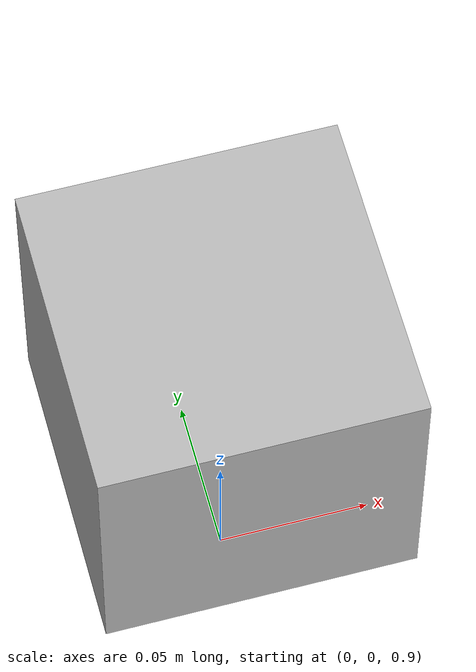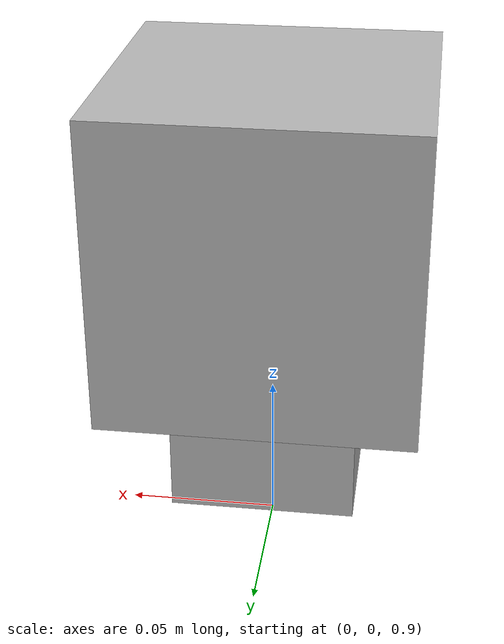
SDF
<?xml version="1.0"?>
<sdf version="1.9">
  <world name="sandia_hand_full_test">
    <physics name="1ms" type="ode">
      <max_step_size>0.001</max_step_size>
      <real_time_factor>0</real_time_factor>
    </physics>
    <plugin filename="gz-sim-physics-system" name="gz::sim::systems::Physics"/>

    <model name="sandia_hand_full_test_model">
      <pose>0 0 1 0 0 0</pose>
      <static>false</static>

      <link name="l_hand">
        <inertial>
          <mass>0.5</mass>
          <inertia><ixx>0.001</ixx><iyy>0.001</iyy><izz>0.001</izz></inertia>
        </inertial>
        <collision name="palm_mid_collision">
          <pose>0 0 -0.05 0 0 0</pose>
          <geometry>
            <box><size>0.06 0.06 0.06</size></box>
          </geometry>
        </collision>
        <visual name="palm_visual">
          <pose>0 0 -0.05 0 0 0</pose>
          <geometry>
            <box><size>0.06 0.06 0.06</size></box>
          </geometry>
        </visual>
      </link>

      <joint name="anchor" type="fixed">
        <parent>world</parent>
        <child>l_hand</child>
      </joint>

      <!-- Finger 0: joints left_f0_j0/j1/j2 -->
      <link name="l_f0_link0">
        <pose>0.05 0 0 0 0 0</pose>
        <inertial>
          <mass>0.05</mass>
          <inertia><ixx>0.0001</ixx><iyy>0.0001</iyy><izz>0.0001</izz></inertia>
        </inertial>
      </link>
      <joint name="left_f0_j0" type="revolute">
        <parent>l_hand</parent>
        <child>l_f0_link0</child>
        <axis>
          <xyz>0 0 1</xyz>
          <limit><lower>-1.57</lower><upper>1.57</upper></limit>
        </axis>
      </joint>
      <link name="l_f0_link1">
        <pose>0.09 0 0 0 0 0</pose>
        <inertial>
          <mass>0.05</mass>
          <inertia><ixx>0.0001</ixx><iyy>0.0001</iyy><izz>0.0001</izz></inertia>
        </inertial>
      </link>
      <joint name="left_f0_j1" type="revolute">
        <parent>l_f0_link0</parent>
        <child>l_f0_link1</child>
        <axis>
          <xyz>0 0 1</xyz>
          <limit><lower>-1.57</lower><upper>1.57</upper></limit>
        </axis>
      </joint>
      <link name="l_f0_link2">
        <pose>0.13 0 0 0 0 0</pose>
        <inertial>
          <mass>0.05</mass>
          <inertia><ixx>0.0001</ixx><iyy>0.0001</iyy><izz>0.0001</izz></inertia>
        </inertial>
      </link>
      <joint name="left_f0_j2" type="revolute">
        <parent>l_f0_link1</parent>
        <child>l_f0_link2</child>
        <axis>
          <xyz>0 0 1</xyz>
          <limit><lower>-1.57</lower><upper>1.57</upper></limit>
        </axis>
      </joint>

      <!-- Finger 1: joints left_f1_j0/j1/j2 -->
      <link name="l_f1_link0">
        <pose>0 0.05 0 0 0 0</pose>
        <inertial>
          <mass>0.05</mass>
          <inertia><ixx>0.0001</ixx><iyy>0.0001</iyy><izz>0.0001</izz></inertia>
        </inertial>
      </link>
      <joint name="left_f1_j0" type="revolute">
        <parent>l_hand</parent>
        <child>l_f1_link0</child>
        <axis>
          <xyz>0 0 1</xyz>
          <limit><lower>-1.57</lower><upper>1.57</upper></limit>
        </axis>
      </joint>
      <link name="l_f1_link1">
        <pose>0 0.09 0 0 0 0</pose>
        <inertial>
          <mass>0.05</mass>
          <inertia><ixx>0.0001</ixx><iyy>0.0001</iyy><izz>0.0001</izz></inertia>
        </inertial>
      </link>
      <joint name="left_f1_j1" type="revolute">
        <parent>l_f1_link0</parent>
        <child>l_f1_link1</child>
        <axis>
          <xyz>0 0 1</xyz>
          <limit><lower>-1.57</lower><upper>1.57</upper></limit>
        </axis>
      </joint>
      <link name="l_f1_link2">
        <pose>0 0.13 0 0 0 0</pose>
        <inertial>
          <mass>0.05</mass>
          <inertia><ixx>0.0001</ixx><iyy>0.0001</iyy><izz>0.0001</izz></inertia>
        </inertial>
      </link>
      <joint name="left_f1_j2" type="revolute">
        <parent>l_f1_link1</parent>
        <child>l_f1_link2</child>
        <axis>
          <xyz>0 0 1</xyz>
          <limit><lower>-1.57</lower><upper>1.57</upper></limit>
        </axis>
      </joint>

      <!-- Finger 2: joints left_f2_j0/j1/j2 -->
      <link name="l_f2_link0">
        <pose>-0.05 0 0 0 0 0</pose>
        <inertial>
          <mass>0.05</mass>
          <inertia><ixx>0.0001</ixx><iyy>0.0001</iyy><izz>0.0001</izz></inertia>
        </inertial>
      </link>
      <joint name="left_f2_j0" type="revolute">
        <parent>l_hand</parent>
        <child>l_f2_link0</child>
        <axis>
          <xyz>0 0 1</xyz>
          <limit><lower>-1.57</lower><upper>1.57</upper></limit>
        </axis>
      </joint>
      <link name="l_f2_link1">
        <pose>-0.09 0 0 0 0 0</pose>
        <inertial>
          <mass>0.05</mass>
          <inertia><ixx>0.0001</ixx><iyy>0.0001</iyy><izz>0.0001</izz></inertia>
        </inertial>
      </link>
      <joint name="left_f2_j1" type="revolute">
        <parent>l_f2_link0</parent>
        <child>l_f2_link1</child>
        <axis>
          <xyz>0 0 1</xyz>
          <limit><lower>-1.57</lower><upper>1.57</upper></limit>
        </axis>
      </joint>
      <link name="l_f2_link2">
        <pose>-0.13 0 0 0 0 0</pose>
        <inertial>
          <mass>0.05</mass>
          <inertia><ixx>0.0001</ixx><iyy>0.0001</iyy><izz>0.0001</izz></inertia>
        </inertial>
      </link>
      <joint name="left_f2_j2" type="revolute">
        <parent>l_f2_link1</parent>
        <child>l_f2_link2</child>
        <axis>
          <xyz>0 0 1</xyz>
          <limit><lower>-1.57</lower><upper>1.57</upper></limit>
        </axis>
      </joint>

      <!-- Finger 3: joints left_f3_j0/j1/j2 -->
      <link name="l_f3_link0">
        <pose>0 -0.05 0 0 0 0</pose>
        <inertial>
          <mass>0.05</mass>
          <inertia><ixx>0.0001</ixx><iyy>0.0001</iyy><izz>0.0001</izz></inertia>
        </inertial>
      </link>
      <joint name="left_f3_j0" type="revolute">
        <parent>l_hand</parent>
        <child>l_f3_link0</child>
        <axis>
          <xyz>0 0 1</xyz>
          <limit><lower>-1.57</lower><upper>1.57</upper></limit>
        </axis>
      </joint>
      <link name="l_f3_link1">
        <pose>0 -0.09 0 0 0 0</pose>
        <inertial>
          <mass>0.05</mass>
          <inertia><ixx>0.0001</ixx><iyy>0.0001</iyy><izz>0.0001</izz></inertia>
        </inertial>
      </link>
      <joint name="left_f3_j1" type="revolute">
        <parent>l_f3_link0</parent>
        <child>l_f3_link1</child>
        <axis>
          <xyz>0 0 1</xyz>
          <limit><lower>-1.57</lower><upper>1.57</upper></limit>
        </axis>
      </joint>
      <link name="l_f3_link2">
        <pose>0 -0.13 0 0 0 0</pose>
        <inertial>
          <mass>0.05</mass>
          <inertia><ixx>0.0001</ixx><iyy>0.0001</iyy><izz>0.0001</izz></inertia>
        </inertial>
      </link>
      <joint name="left_f3_j2" type="revolute">
        <parent>l_f3_link1</parent>
        <child>l_f3_link2</child>
        <axis>
          <xyz>0 0 1</xyz>
          <limit><lower>-1.57</lower><upper>1.57</upper></limit>
        </axis>
      </joint>

      <plugin filename="SandiaHandPlugin"
              name="drcsim_gazebo_ros_plugins::SandiaHandPlugin">
        <side>left</side>
      </plugin>
    </model>

    <model name="obstacle">
      <static>false</static>
      <pose>0 0 1.01 0 0 0</pose>
      <link name="obstacle_link">
        <inertial>
          <mass>1.0</mass>
          <inertia><ixx>0.001</ixx><iyy>0.001</iyy><izz>0.001</izz></inertia>
        </inertial>
        <collision name="obstacle_collision">
          <geometry>
            <box><size>0.1 0.1 0.1</size></box>
          </geometry>
        </collision>
        <visual name="obstacle_visual">
          <geometry>
            <box><size>0.1 0.1 0.1</size></box>
          </geometry>
        </visual>
      </link>
    </model>
  </world>
</sdf>
